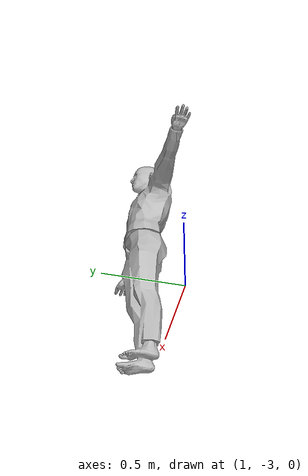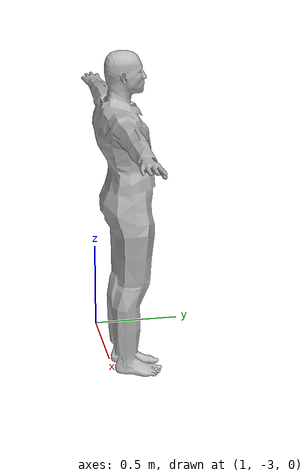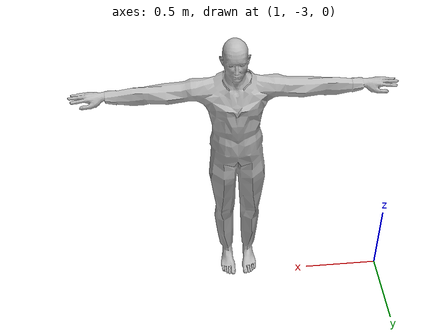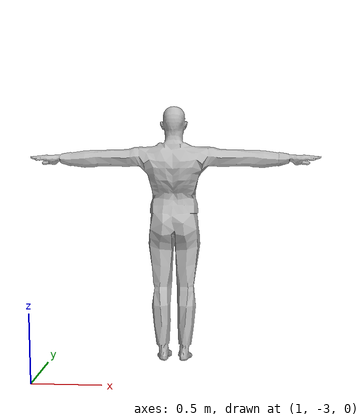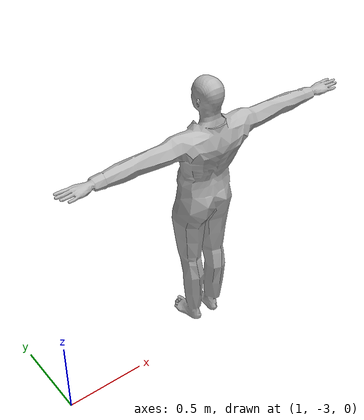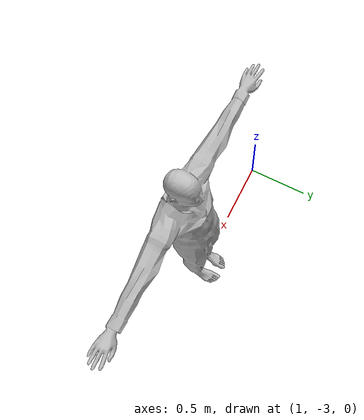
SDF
<?xml version='1.0'?>
<sdf version='1.5'>
  <model name='manGreanShirtBlackJean'>
    <static>true</static>
    <pose frame=''>2 -3 1.04 0 -0 0</pose>
    <link name='defaultModel_0::custom_0'>
      <pose frame=''>0 0 0 0 -0 0</pose>
      <gravity>1</gravity>
      <self_collide>0</self_collide>
      <kinematic>0</kinematic>
      <visual name='custom_0_visual'>
        <pose frame=''>0 0 0 0 -0 0</pose>
        <geometry>
          <mesh>
            <uri>model://man-GreenShirt-blackJean/man.dae</uri>
            <scale>1 1 1</scale>
          </mesh>
        </geometry>
        <material>
          <script>
            <uri>file://media/materials/scripts/gazebo.material</uri>
          </script>
        </material>
      </visual>
      <collision name='defaultModel_0::custom_0_collision'>
        <geometry>
          <mesh>
            <uri>model://man-GreenShirt-blackJean/man.dae</uri>
            <scale>1 1 1</scale>
          </mesh>
        </geometry>
        <pose frame=''>0 0 0 0 -0 0</pose>
      </collision>
    </link>

    <allow_auto_disable>1</allow_auto_disable>
  </model>
</sdf>
